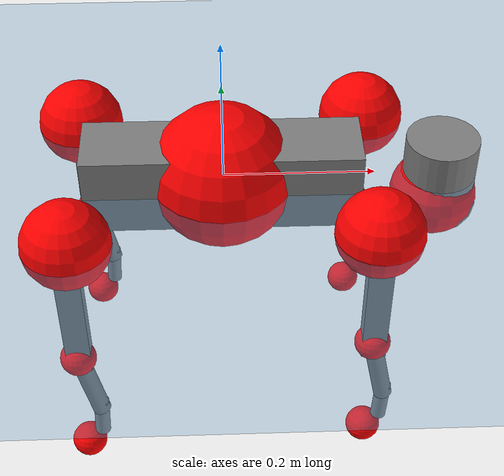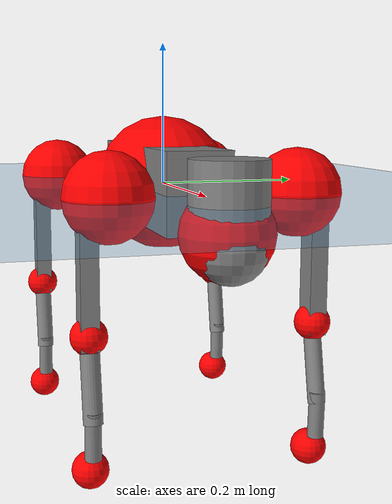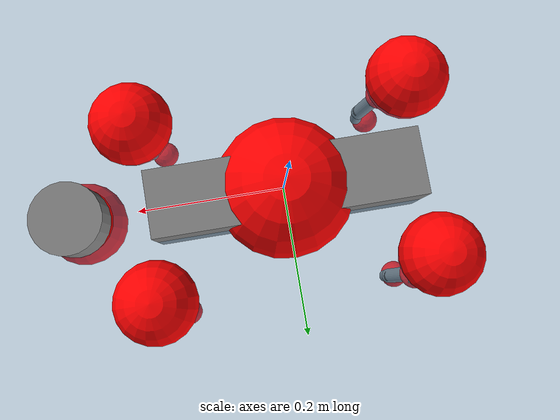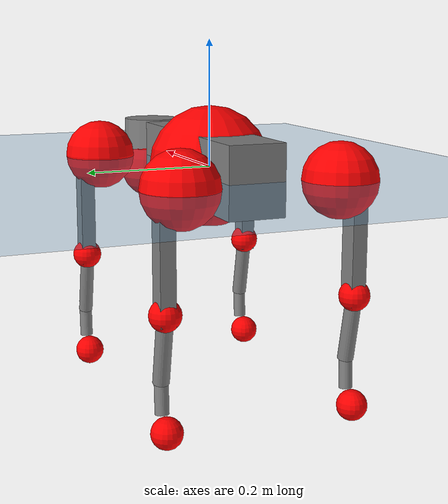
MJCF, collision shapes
<mujoco model="go2">
  <compiler angle="radian" assetdir="assets" balanceinertia="true" inertiafromgeom="false"/>

  <option timestep="0.005" density="1.2" viscosity="2e-05"/>

  <size nkey="1"/>

  <visual>
    <quality shadowsize="8192"/>
    <map shadowclip="0.5"/>
  </visual>

  <default>
    <default class="/">
      <geom contype="0" conaffinity="0" group="1" solref="-1000 -80"/>
      <site size="0.01 0.005 0.005" group="5"/>
      <general forcelimited="true" biastype="affine" gainprm="20" biasprm="0 -20 -0.5"/>
      <default class="go2">
        <joint armature="0.01" damping="0.01" frictionloss="0.2"/>
        <geom condim="1" margin="0.001"/>
        <default class="visual">
          <geom type="mesh" group="2"/>
        </default>
        <default class="collision">
          <geom group="3"/>
          <default class="foot">
            <geom size="0.022 0 0" condim="6" priority="1" friction="0.8 0.02 0.01" solimp="0.015 1 0.022"/>
          </default>
        </default>
        <default class="reward_collision_sphere">
          <geom group="5" rgba="1 0 0 1"/>
        </default>
      </default>
    </default>
  </default>

  <asset>
    <texture type="skybox" colorspace="auto" name="//unnamed_texture_0" builtin="gradient" rgb1="0.95 0.95 0.95" rgb2="0.95 0.95 0.95" width="100" height="600"/>
    <texture type="2d" colorspace="auto" name="texplane" builtin="checker" rgb1="0.345 0.575 0.748" rgb2="0.345 0.575 0.748" markrgb="1 1 1" width="512" height="512"/>
    <material name="MatPlane" class="/" texture="texplane" texuniform="true" texrepeat="2 2" specular="0.9"/>
    <material name="metal" class="/" rgba="0.9 0.95 0.95 1"/>
    <material name="black" class="/" rgba="0 0 0 1"/>
    <material name="white" class="/"/>
    <material name="gray" class="/" rgba="0.671705 0.692426 0.77427 1"/>
    <mesh name="base_0" class="/" file="base_0.obj"/>
    <mesh name="base_1" class="/" file="base_1.obj"/>
    <mesh name="base_2" class="/" file="base_2.obj"/>
    <mesh name="base_3" class="/" file="base_3.obj"/>
    <mesh name="base_4" class="/" file="base_4.obj"/>
    <mesh name="hip_0" class="/" file="hip_0.obj"/>
    <mesh name="hip_1" class="/" file="hip_1.obj"/>
    <mesh name="thigh_0" class="/" file="thigh_0.obj"/>
    <mesh name="thigh_1" class="/" file="thigh_1.obj"/>
    <mesh name="thigh_mirror_0" class="/" file="thigh_mirror_0.obj"/>
    <mesh name="thigh_mirror_1" class="/" file="thigh_mirror_1.obj"/>
    <mesh name="calf_0" class="/" file="calf_0.obj"/>
    <mesh name="calf_1" class="/" file="calf_1.obj"/>
    <mesh name="calf_mirror_0" class="/" file="calf_mirror_0.obj"/>
    <mesh name="calf_mirror_1" class="/" file="calf_mirror_1.obj"/>
    <mesh name="foot" class="/" file="foot.obj"/>
  </asset>

  <worldbody>
    <geom name="floor" class="/" size="100 100 0.125" type="plane" group="0" material="MatPlane"/>
    <light name="toplight_shadow" class="/" pos="0 0 5" dir="0.0990148 0.0990148 -0.990148" type="directional" ambient="0.04 0.04 0.04" diffuse="0.55 0.55 0.55" specular="0.12 0.12 0.12"/>
    <light name="toplight_fill" class="/" pos="0 0 5" dir="0.0990148 0.0990148 -0.990148" type="directional" castshadow="false" ambient="0.04 0.04 0.04" diffuse="0.3 0.3 0.3" specular="0.08 0.08 0.08"/>
    <body name="trunk" childclass="go2" pos="-0.00166811 0.000158784 0.000921751" quat="1 0.000187667 4.26138e-05 -0.000209566">
      <inertial pos="0.0191289 -0.00026088 -0.00431291" quat="-0.00294635 0.715371 -0.00430442 0.698725" mass="6.1944" diaginertia="0.112398 0.135673 0.00921862"/>
      <joint name="//unnamed_joint_0" type="free" armature="0" damping="0" frictionloss="0"/>
      <geom name="//unnamed_geom_1" class="visual" material="black" mesh="base_0"/>
      <geom name="//unnamed_geom_2" class="visual" material="black" mesh="base_1"/>
      <geom name="//unnamed_geom_3" class="visual" material="black" mesh="base_2"/>
      <geom name="//unnamed_geom_4" class="visual" material="white" mesh="base_3"/>
      <geom name="//unnamed_geom_5" class="visual" material="gray" mesh="base_4"/>
      <geom name="trunk_1" class="collision" size="0.181434 0.0450934 0.0549801" type="box"/>
      <geom name="trunk_2" class="collision" size="0.0482282 0.0434054" pos="0.287322 0 0.00819963" type="cylinder"/>
      <geom name="trunk_3" class="collision" size="0.0453345" pos="0.295387 0 -0.0491978"/>
      <geom name="//unnamed_geom_9" class="reward_collision_sphere" size="0.0964564"/>
      <geom name="//unnamed_geom_10" class="reward_collision_sphere" size="0.0578738" pos="0.282281 0 -0.0368983"/>
      <site name="imu" pos="-0.0274322 -0.0041601 0.0362683" size="0.00964564"/>
      <camera name="track" pos="0 -2.13116 0" quat="0.707107 0.707107 0 0" mode="trackcom"/>
      <camera name="ego_camera" pos="0.314542 0 0.0368983" quat="-0.5 -0.5 0.5 0.5"/>
      <body name="FL_hip" pos="0.195141 0.0505949 0.00110661" quat="1 -0.000131873 -0.000674419 -0.000379327">
        <inertial pos="-0.00726718 0.00320332 0.000757598" quat="0.496784 0.499121 0.505465 0.498587" mass="0.61205" diaginertia="0.000926689 0.00081429 0.000178219"/>
        <joint name="FL_hip_joint" pos="0 0 0" axis="0.999998 0.00203382 0.000291823" stiffness="0.00171193" range="-1.04761 1.0271" armature="0.0097665" damping="0.00369395" frictionloss="0.183507"/>
        <geom name="//unnamed_geom_11" class="visual" material="metal" mesh="hip_0"/>
        <geom name="//unnamed_geom_12" class="visual" material="gray" mesh="hip_1"/>
        <geom name="//unnamed_geom_13" class="collision" size="0.0443699 0.0192913" pos="0 0.0852464 0" quat="0.707107 0.707107 0 0" type="cylinder"/>
        <geom name="//unnamed_geom_14" class="reward_collision_sphere" size="0.0578738" pos="0 0.0745906 0"/>
        <body name="FL_thigh" pos="-0.000626908 0.102321 0.000946086" quat="1 0.000243593 -2.21445e-05 9.2518e-05">
          <inertial pos="-0.00223518 -0.0230191 -0.0255382" quat="0.829523 0.0852808 -0.0203001 0.551549" mass="1.03842" diaginertia="0.00618464 0.00801824 0.000330236"/>
          <joint name="FL_thigh_joint" pos="0 0 0" axis="-0.000981408 0.999999 0.000827292" stiffness="0.0136455" range="-1.57975 3.50309" armature="0.00970899" damping="0" frictionloss="0.183478"/>
          <geom name="//unnamed_geom_15" class="visual" material="metal" mesh="thigh_0"/>
          <geom name="//unnamed_geom_16" class="visual" material="gray" mesh="thigh_1"/>
          <geom name="//unnamed_geom_17" class="collision" size="0.102726 0.0118159 0.0163976" pos="0 0 -0.087326" quat="0.707107 0 0.707107 0" type="box"/>
          <body name="FL_calf" pos="-0.000639383 -0.000325263 -0.17507" quat="1 -5.46707e-05 0.000157399 -0.000226082">
            <inertial pos="0.00572174 -0.00138857 -0.115769" quat="0.710342 -0.00130172 7.15449e-05 0.703855" mass="0.21554" diaginertia="0.00156437 0.00198656 1.97856e-05"/>
            <joint name="FL_calf_joint" pos="0 0 0" axis="0.00240697 0.999969 0.00751035" stiffness="0.000729104" range="-2.73542 -0.849782" armature="0.0100984" damping="0.00621655" frictionloss="0.187815"/>
            <geom name="//unnamed_geom_18" class="visual" material="gray" mesh="calf_0"/>
            <geom name="//unnamed_geom_19" class="visual" material="black" mesh="calf_1"/>
            <geom name="FL_calf0" class="collision" size="0.0115748 0.0578738" pos="0.00806519 0 -0.0491978" quat="0.994493 0 -0.104807 0" type="cylinder"/>
            <geom name="//unnamed_geom_21" class="collision" size="0.0106102 0.0313483" pos="0.020163 0 -0.121354" quat="0.999688 0 0.0249974 0" type="cylinder"/>
            <geom name="//unnamed_geom_22" class="visual" pos="0 0 -0.174652" quat="1 0 0 0" material="black" mesh="foot"/>
            <geom name="FL_foot" class="foot" size="0.0148733" pos="-0.0020163 0 -0.174652"/>
            <geom name="//unnamed_geom_24" class="reward_collision_sphere" size="0.0241141"/>
            <geom name="//unnamed_geom_25" class="reward_collision_sphere" size="0.0241141" pos="-0.0020163 0 -0.174652"/>
            <site name="FL_foot" class="foot" pos="-0.0020163 0 -0.174652" size="0.00964564"/>
          </body>
        </body>
      </body>
      <body name="FR_hip" pos="0.195135 -0.0478205 0.000723755" quat="1 0.00026706 0.000131472 0.000205287">
        <inertial pos="-0.0044898 -0.00217695 -0.000244262" quat="0.497483 0.505894 0.499517 0.497055" mass="0.623748" diaginertia="0.000912582 0.00081548 0.000178642"/>
        <joint name="FR_hip_joint" pos="0 0 0" axis="0.99999 -0.000587767 0.00433723" range="-1.06511 1.05101" armature="0.00874818" damping="0.0206795" frictionloss="0.209751"/>
        <geom name="//unnamed_geom_26" class="visual" pos="0 2.13972e-09 9.1777e-08" quat="4.63268e-05 1 0 0" material="metal" mesh="hip_0"/>
        <geom name="//unnamed_geom_27" class="visual" pos="0 3.46874e-09 -2.27e-07" quat="4.63268e-05 1 0 0" material="gray" mesh="hip_1"/>
        <geom name="//unnamed_geom_28" class="collision" size="0.0443699 0.0192913" pos="0 -0.0852464 0" quat="0.707107 0.707107 0 0" type="cylinder"/>
        <geom name="//unnamed_geom_29" class="reward_collision_sphere" size="0.0578738" pos="0 -0.0745906 0"/>
        <body name="FR_thigh" pos="0.000174915 -0.101575 0.00197283" quat="1 7.07061e-05 -0.000443825 0.000464603">
          <inertial pos="-0.00353403 0.0219932 -0.026244" quat="0.550951 -0.0195676 0.0823084 0.830238" mass="1.01861" diaginertia="0.00626901 0.00820934 0.000326972"/>
          <joint name="FR_thigh_joint" pos="0 0 0" axis="-0.00332949 -0.999992 0.00202735" range="-3.48155 1.58863" armature="0.00966627" damping="0.0111122" frictionloss="0.183509"/>
          <geom name="//unnamed_geom_30" class="visual" material="metal" mesh="thigh_mirror_0"/>
          <geom name="//unnamed_geom_31" class="visual" material="gray" mesh="thigh_mirror_1"/>
          <geom name="//unnamed_geom_32" class="collision" size="0.102726 0.0118159 0.0163976" pos="0 0 -0.087326" quat="0.707107 0 0.707107 0" type="box"/>
          <body name="FR_calf" pos="-0.000837436 0.000773966 -0.174129" quat="1 3.08949e-05 -4.30584e-05 4.72419e-05">
            <inertial pos="0.00547118 0.000840931 -0.115686" quat="0.705363 -0.0040551 0.00113893 0.708834" mass="0.217668" diaginertia="0.00158178 0.0020279 1.98102e-05"/>
            <joint name="FR_calf_joint" pos="0 0 0" axis="0.00230889 -0.999969 0.00757392" stiffness="0.000410158" range="0.833221 2.71775" armature="0.00967304" damping="0.00592198" frictionloss="0.191826"/>
            <geom name="//unnamed_geom_33" class="visual" material="gray" mesh="calf_mirror_0"/>
            <geom name="//unnamed_geom_34" class="visual" material="black" mesh="calf_mirror_1"/>
            <geom name="FR_calf0" class="collision" size="0.0125393 0.0578738" pos="0.0100815 0 -0.0491978" quat="0.995004 0 -0.0998334 0" type="cylinder"/>
            <geom name="//unnamed_geom_36" class="collision" size="0.0106102 0.0313483" pos="0.020163 0 -0.121354" quat="0.999688 0 0.0249974 0" type="cylinder"/>
            <geom name="//unnamed_geom_37" class="visual" pos="0 0 -0.174652" quat="1 0 0 0" material="black" mesh="foot"/>
            <geom name="FR_foot" class="foot" size="0.0223762" pos="-0.0020163 0 -0.174652"/>
            <geom name="//unnamed_geom_39" class="reward_collision_sphere" size="0.0241141"/>
            <geom name="//unnamed_geom_40" class="reward_collision_sphere" size="0.0241141" pos="-0.0020163 0 -0.174652"/>
            <site name="FR_foot" class="foot" pos="-0.0020163 0 -0.174652" size="0.00964564"/>
          </body>
        </body>
      </body>
      <body name="RL_hip" pos="-0.193949 0.0483338 -0.000988439" quat="0.999999 -5.30244e-05 0.00109394 0.00030607">
        <inertial pos="0.00688498 0.00179921 0.00052153" quat="0.505447 0.498389 0.496774 0.499347" mass="0.60785" diaginertia="0.000919174 0.000817836 0.000178018"/>
        <joint name="RL_hip_joint" pos="0 0 0" axis="-0.999856 -0.00993147 0.0137793" range="-1.05655 1.05806" armature="0.00959091" damping="0.0147199" frictionloss="0.184255"/>
        <geom name="//unnamed_geom_41" class="visual" pos="-1.63939e-09 0 -3.21359e-07" quat="4.63268e-05 0 1 0" material="metal" mesh="hip_0"/>
        <geom name="//unnamed_geom_42" class="visual" pos="-2.65765e-09 0 -2.84999e-07" quat="4.63268e-05 0 1 0" material="gray" mesh="hip_1"/>
        <geom name="//unnamed_geom_43" class="collision" size="0.0443699 0.0192913" pos="0 0.0852464 0" quat="0.707107 0.707107 0 0" type="cylinder"/>
        <geom name="//unnamed_geom_44" class="reward_collision_sphere" size="0.0578738" pos="0 0.0745906 0"/>
        <body name="RL_thigh" pos="-0.00164589 0.100113 -0.000326737" quat="1 -0.00063297 -0.000144987 0.000454011">
          <inertial pos="-0.00358973 -0.0240813 -0.0272951" quat="0.828635 0.0876184 -0.015981 0.552659" mass="1.02334" diaginertia="0.00616199 0.0079828 0.000322727"/>
          <joint name="RL_thigh_joint" pos="0 0 0" axis="-0.00167399 0.999979 0.00629388" stiffness="0.000753933" range="-0.532668 4.53538" armature="0.00978898" damping="0" frictionloss="0.200501"/>
          <geom name="//unnamed_geom_45" class="visual" material="metal" mesh="thigh_0"/>
          <geom name="//unnamed_geom_46" class="visual" material="gray" mesh="thigh_1"/>
          <geom name="//unnamed_geom_47" class="collision" size="0.102726 0.0118159 0.0163976" pos="0 0 -0.087326" quat="0.707107 0 0.707107 0" type="box"/>
          <body name="RL_calf" pos="0.000558526 -0.000950877 -0.17625" quat="1 -0.000154445 -0.000156255 -9.07798e-06">
            <inertial pos="0.00634639 -0.000666569 -0.116566" quat="0.710342 0.00101074 -0.00468021 0.70384" mass="0.217695" diaginertia="0.00155067 0.00200731 1.97479e-05"/>
            <joint name="RL_calf_joint" pos="0 0 0" axis="-0.00836173 0.999959 -0.00349487" stiffness="0.000570877" range="-2.71481 -0.836569" armature="0.00999588" damping="0" frictionloss="0.196262"/>
            <geom name="//unnamed_geom_48" class="visual" material="gray" mesh="calf_0"/>
            <geom name="//unnamed_geom_49" class="visual" material="black" mesh="calf_1"/>
            <geom name="RL_calf0" class="collision" size="0.0125393 0.0578738" pos="0.0100815 0 -0.0491978" quat="0.995004 0 -0.0998334 0" type="cylinder"/>
            <geom name="//unnamed_geom_51" class="collision" size="0.0106102 0.0313483" pos="0.020163 0 -0.121354" quat="0.999688 0 0.0249974 0" type="cylinder"/>
            <geom name="//unnamed_geom_52" class="visual" pos="0 0 -0.174652" quat="1 0 0 0" material="black" mesh="foot"/>
            <geom name="RL_foot" class="foot" size="0.0193063" pos="-0.0020163 0 -0.174652"/>
            <geom name="//unnamed_geom_54" class="reward_collision_sphere" size="0.0241141"/>
            <geom name="//unnamed_geom_55" class="reward_collision_sphere" size="0.0241141" pos="-0.0020163 0 -0.174652"/>
            <site name="RL_foot" class="foot" pos="-0.0020163 0 -0.174652" size="0.00964564"/>
          </body>
        </body>
      </body>
      <body name="RR_hip" pos="-0.195242 -0.0521543 -0.00191036" quat="1 7.5333e-05 4.0708e-07 0.000139585">
        <inertial pos="0.00553864 -0.00145972 -9.2853e-05" quat="0.504455 0.494515 0.498283 0.502687" mass="0.610824" diaginertia="0.000915121 0.000816179 0.000180621"/>
        <joint name="RR_hip_joint" pos="0 0 0" axis="-0.999998 0.000282566 0.00190291" range="-1.03794 1.04377" armature="0.0104762" damping="0.0164148" frictionloss="0.18314"/>
        <geom name="//unnamed_geom_56" class="visual" pos="1.64138e-09 2.13972e-09 -4.13136e-07" quat="2.14617e-09 4.63268e-05 4.63268e-05 -1" material="metal" mesh="hip_0"/>
        <geom name="//unnamed_geom_57" class="visual" pos="2.65273e-09 3.46874e-09 -5.79998e-08" quat="2.14617e-09 4.63268e-05 4.63268e-05 -1" material="gray" mesh="hip_1"/>
        <geom name="//unnamed_geom_58" class="collision" size="0.0443699 0.0192913" pos="0 -0.0852464 0" quat="0.707107 0.707107 0 0" type="cylinder"/>
        <geom name="//unnamed_geom_59" class="reward_collision_sphere" size="0.0578738" pos="0 -0.0745906 0"/>
        <body name="RR_thigh" pos="0.000670645 -0.10213 -0.00225942" quat="1 -1.14813e-05 7.36548e-06 -1.24525e-05">
          <inertial pos="-0.00348664 0.0246698 -0.0271343" quat="0.55173 -0.0208453 0.0839791 0.829522" mass="1.05788" diaginertia="0.00633921 0.00809166 0.000323989"/>
          <joint name="RR_thigh_joint" pos="0 0 0" axis="0.00184533 -0.999996 0.0020955" range="-4.56447 0.512626" armature="0.00920942" damping="0.0186519" frictionloss="0.195536"/>
          <geom name="//unnamed_geom_60" class="visual" material="metal" mesh="thigh_mirror_0"/>
          <geom name="//unnamed_geom_61" class="visual" material="gray" mesh="thigh_mirror_1"/>
          <geom name="//unnamed_geom_62" class="collision" size="0.102726 0.0118159 0.0163976" pos="0 0 -0.087326" quat="0.707107 0 0.707107 0" type="box"/>
          <body name="RR_calf" pos="-0.0016939 -0.00128434 -0.17585" quat="1 -6.67437e-05 -0.000122072 0.000206874">
            <inertial pos="0.00816225 0.000392926 -0.116994" quat="0.704044 -0.00208662 -0.00230833 0.71015" mass="0.216901" diaginertia="0.00150097 0.00196573 1.91719e-05"/>
            <joint name="RR_calf_joint" pos="0 0 0" axis="-0.00492723 -0.999986 0.00166494" stiffness="0.000552597" range="0.838977 2.76819" armature="0.00946756" damping="0.0126" frictionloss="0.189919"/>
            <geom name="//unnamed_geom_63" class="visual" material="gray" mesh="calf_mirror_0"/>
            <geom name="//unnamed_geom_64" class="visual" material="black" mesh="calf_mirror_1"/>
            <geom name="RR_calf0" class="collision" size="0.0125393 0.0578738" pos="0.0100815 0 -0.0491978" quat="0.995004 0 -0.0998334 0" type="cylinder"/>
            <geom name="//unnamed_geom_66" class="collision" size="0.0106102 0.0313483" pos="0.020163 0 -0.121354" quat="0.999688 0 0.0249974 0" type="cylinder"/>
            <geom name="//unnamed_geom_67" class="visual" pos="0 0 -0.174652" quat="1 0 0 0" material="black" mesh="foot"/>
            <geom name="RR_foot" class="foot" size="0.0230586" pos="-0.0020163 0 -0.174652"/>
            <geom name="//unnamed_geom_69" class="reward_collision_sphere" size="0.0241141"/>
            <geom name="//unnamed_geom_70" class="reward_collision_sphere" size="0.0241141" pos="-0.0020163 0 -0.174652"/>
            <site name="RR_foot" class="foot" pos="-0.0020163 0 -0.174652" size="0.00964564"/>
          </body>
        </body>
      </body>
    </body>
  </worldbody>

  <contact>
    <pair class="/" geom1="floor" geom2="FL_foot" name="//unnamed_contact_0"/>
    <pair class="/" geom1="floor" geom2="FR_foot" name="//unnamed_contact_1"/>
    <pair class="/" geom1="floor" geom2="RL_foot" name="//unnamed_contact_2"/>
    <pair class="/" geom1="floor" geom2="RR_foot" name="//unnamed_contact_3"/>
  </contact>

  <actuator>
    <general name="FL_hip" class="/" joint="FL_hip_joint" forcerange="-22.6583 22.6583" gainprm="19.3482" biasprm="0 -19.3482 -0.484979"/>
    <general name="FL_thigh" class="/" joint="FL_thigh_joint" forcerange="-23.6975 23.6975" gainprm="19.3482" biasprm="0 -19.3482 -0.484979"/>
    <general name="FL_calf" class="/" joint="FL_calf_joint" forcerange="-43.5914 43.5914" gainprm="19.3482" biasprm="0 -19.3482 -0.484979"/>
    <general name="FR_hip" class="/" joint="FR_hip_joint" forcerange="-24.5006 24.5006" gainprm="19.3482" biasprm="0 -19.3482 -0.484979"/>
    <general name="FR_thigh" class="/" joint="FR_thigh_joint" forcerange="-22.976 22.976" gainprm="19.3482" biasprm="0 -19.3482 -0.484979"/>
    <general name="FR_calf" class="/" joint="FR_calf_joint" forcerange="-43.2503 43.2503" gainprm="19.3482" biasprm="0 -19.3482 -0.484979"/>
    <general name="RL_hip" class="/" joint="RL_hip_joint" forcerange="-22.4461 22.4461" gainprm="19.3482" biasprm="0 -19.3482 -0.484979"/>
    <general name="RL_thigh" class="/" joint="RL_thigh_joint" forcerange="-22.5755 22.5755" gainprm="19.3482" biasprm="0 -19.3482 -0.484979"/>
    <general name="RL_calf" class="/" joint="RL_calf_joint" forcerange="-44.7191 44.7191" gainprm="19.3482" biasprm="0 -19.3482 -0.484979"/>
    <general name="RR_hip" class="/" joint="RR_hip_joint" forcerange="-23.3484 23.3484" gainprm="19.3482" biasprm="0 -19.3482 -0.484979"/>
    <general name="RR_thigh" class="/" joint="RR_thigh_joint" forcerange="-23.3324 23.3324" gainprm="19.3482" biasprm="0 -19.3482 -0.484979"/>
    <general name="RR_calf" class="/" joint="RR_calf_joint" forcerange="-46.3394 46.3394" gainprm="19.3482" biasprm="0 -19.3482 -0.484979"/>
  </actuator>

  <sensor>
    <gyro site="imu" name="imu_angular_velocity"/>
    <velocimeter site="imu" name="imu_linear_velocity"/>
    <framelinvel objtype="site" objname="FL_foot" name="FL_foot_global_linear_velocity"/>
    <framelinvel objtype="site" objname="FR_foot" name="FR_foot_global_linear_velocity"/>
    <framelinvel objtype="site" objname="RL_foot" name="RL_foot_global_linear_velocity"/>
    <framelinvel objtype="site" objname="RR_foot" name="RR_foot_global_linear_velocity"/>
  </sensor>

  <keyframe>
    <key name="home" qpos="0 0 0.325 1 0 0 0 0.1 0.8 -1.5 -0.1 -0.8 1.5 -0.1 0.8 -1.5 0.1 -0.8 1.5"/>
  </keyframe>
</mujoco>
